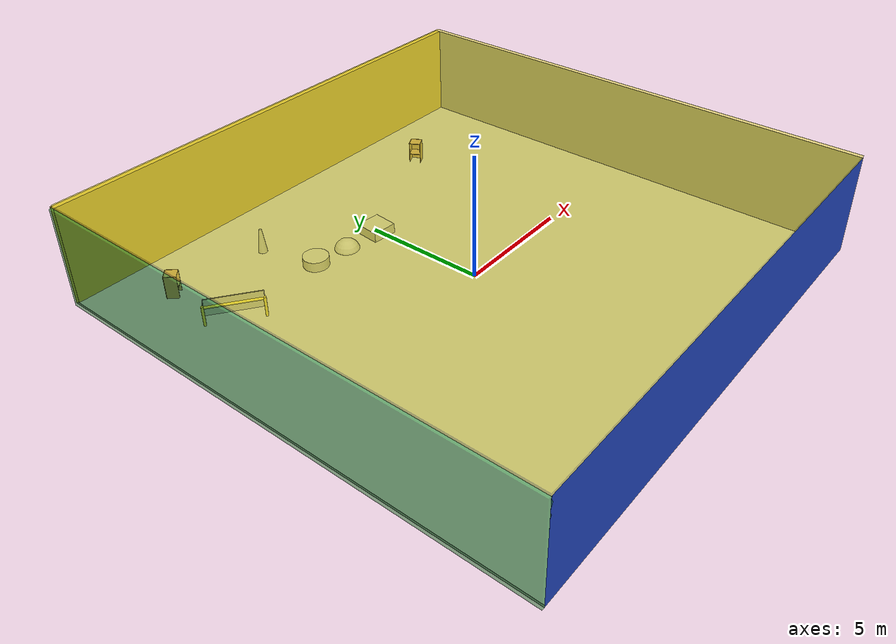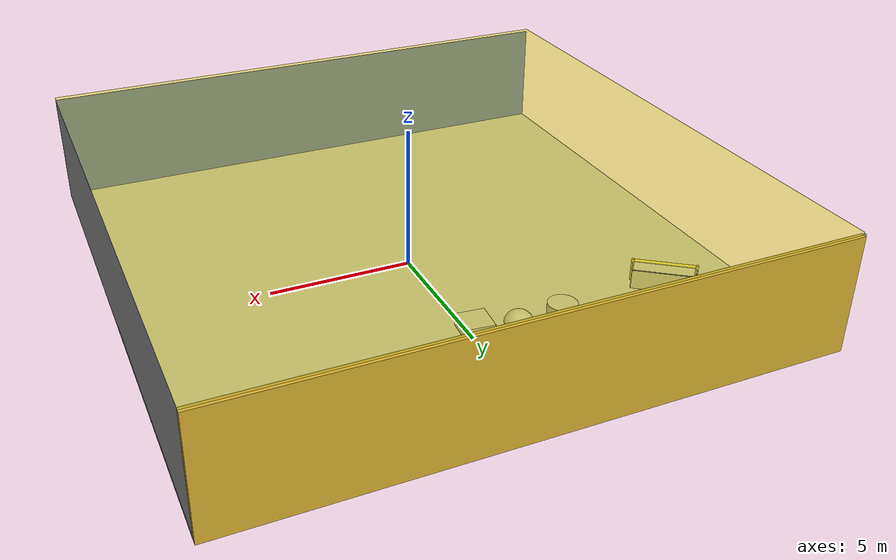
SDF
<sdf version="1.4">
 <world name="default">
  <physics type="ode">
   <max_step_size>0.001</max_step_size>
   <real_time_factor>1</real_time_factor>
   <real_time_update_rate>1000</real_time_update_rate>
   <gravity>0 0 -9.8</gravity>
  </physics>
  <scene><ambient>0.4 0.4 0.4 1</ambient><background>0.7 0.7 0.7 1</background><shadows>1</shadows></scene>
  <model name="Surrounding">
   <static>1</static>
   <link name="Ceiling">
    <collision name="Ceiling_Collision"><geometry><box><size>20 20 0.1</size></box></geometry></collision>
    <visual name="Ceiling_Visual">
     <geometry><box><size>20 20 0.1</size></box></geometry>
     <material>
      <script>
       <uri>file://media/materials/scripts/gazebo.material</uri>
       <name>Gazebo/YellowTransparent</name>
      </script>
     </material>
    </visual>
    <pose>0 0 4.05 0 0 0</pose>
   </link>
   <link name="Wall_South">
    <collision name="Wall_South_Collision">
     <geometry><box><size>20 0 4</size></box></geometry>
     <pose>0 0 2 0 -0 0</pose>
    </collision>
    <visual name="Wall_South_Visual">
     <pose>0 0 2 0 -0 0</pose>
     <geometry><box><size>20 0 4</size></box></geometry>
     <material>
      <script><uri>file://media/materials/scripts/gazebo.material</uri><name>Gazebo/BlueLaser</name></script>
     </material>
    </visual>
    <velocity_decay><linear>0</linear><angular>0</angular></velocity_decay>
    <pose>0 -10 0 0 -0 0</pose>
   </link>
   <link name="Wall_East">
    <collision name="Wall_21_Collision">
     <geometry><box><size>20 0 4</size></box></geometry>
     <pose>0 0 2 0 -0 0</pose>
    </collision>
    <visual name="Wall_21_Visual">
     <pose>0 0 2 0 -0 0</pose>
     <geometry><box><size>20 0 4</size></box></geometry>
     <material>
      <script><uri>file://media/materials/scripts/gazebo.material</uri><name>Gazebo/Grey</name></script>
     </material>
    </visual>
    <velocity_decay><linear>0</linear><angular>0</angular></velocity_decay>
    <pose>10 0 0 0 -0 1.5708</pose>
   </link>
   <link name="Wall_North">
    <collision name="Wall_22_Collision">
     <geometry><box><size>20 0.2 4</size></box></geometry>
     <pose>0 0 2 0 -0 0</pose>
    </collision>
    <visual name="Wall_22_Visual">
     <pose>0 0 2 0 -0 0</pose>
     <geometry><box><size>20 0.2 4</size></box></geometry>
     <material>
      <script><uri>file://media/materials/scripts/gazebo.material</uri><name>Gazebo/Gold</name></script>
     </material>
    </visual>
    <velocity_decay><linear>0</linear><angular>0</angular></velocity_decay>
    <pose>0 10 0 0 -0 0</pose>
   </link>
   <link name="Wall_West">
    <collision name="Wall_23_Collision">
     <geometry><box><size>20 0.2 4</size></box></geometry>
     <pose>0 0 2 0 -0 0</pose>
    </collision>
    <visual name="Wall_23_Visual">
     <pose>0 0 2 0 -0 0</pose>
     <geometry><box><size>20 0.2 4</size></box></geometry>
     <material>
      <script><uri>file://media/materials/scripts/gazebo.material</uri><name>Gazebo/GreenTransparent</name></script>
     </material>
    </visual>
    <velocity_decay><linear>0</linear><angular>0</angular></velocity_decay>
    <pose>-10 0 0 0 0 -1.5708</pose>
   </link>
   <link name="Ground_link">
    <collision name="collision">
     <pose>0 0 .05 0 -0 0</pose>
     <geometry><box><size>20 20 0.1</size></box></geometry>
    </collision>
    <visual name="visual">
     <pose>0 0 .05 0 -0 0</pose>
     <geometry><box><size>20 20 0.1</size></box></geometry>
     <material>
      <script><uri>file://media/materials/scripts/gazebo.material</uri><name>Gazebo/LightOff</name></script>
     </material>
    </visual>
   </link>
   <static>1</static>
  </model>
  <spherical_coordinates>
   <surface_model>EARTH_WGS84</surface_model>
   <latitude_deg>0</latitude_deg>
   <longitude_deg>0</longitude_deg>
   <elevation>0</elevation>
   <heading_deg>0</heading_deg>
  </spherical_coordinates>
  <light name="lightball_0" type="diffuse">
   <diffuse>0.8 0.8 0.8 1</diffuse>
   <specular>0.2 0.2 0.2 1</specular>
   <attenuation>
    <range>100</range>
    <constant>0.7</constant>
    <linear>0.01</linear>
    <quadratic>0.001</quadratic>
   </attenuation>
   <direction>-0.5 0.1 -0.9</direction>
   <pose>-7.81467520887 5.73085348367 1.99723562256 0 0 0</pose>
  </light>
  <light name="lightball_1" type="diffuse">
   <diffuse>0.8 0.8 0.8 1</diffuse>
   <specular>0.2 0.2 0.2 1</specular>
   <attenuation>
    <range>100</range>
    <constant>0.7</constant>
    <linear>0.01</linear>
    <quadratic>0.001</quadratic>
   </attenuation>
   <direction>-0.5 0.1 -0.9</direction>
   <pose>7.37006382633 -1.92878294146 0.870668043779 0 0 0</pose>
  </light>
  <light name="lightball_2" type="diffuse">
   <diffuse>0.8 0.8 0.8 1</diffuse>
   <specular>0.2 0.2 0.2 1</specular>
   <attenuation>
    <range>100</range>
    <constant>0.7</constant>
    <linear>0.01</linear>
    <quadratic>0.001</quadratic>
   </attenuation>
   <direction>-0.5 0.1 -0.9</direction>
   <pose>-4.61660904323 -5.9436264345 2.74327536499 0 0 0</pose>
  </light>
  <light name="lightball_3" type="diffuse">
   <diffuse>0.8 0.8 0.8 1</diffuse>
   <specular>0.2 0.2 0.2 1</specular>
   <attenuation>
    <range>100</range>
    <constant>0.7</constant>
    <linear>0.01</linear>
    <quadratic>0.001</quadratic>
   </attenuation>
   <direction>-0.5 0.1 -0.9</direction>
   <pose>-3.60509848966 5.12532460085 2.9856497096 0 0 0</pose>
  </light>
  <light name="lightball_4" type="diffuse">
   <diffuse>0.8 0.8 0.8 1</diffuse>
   <specular>0.2 0.2 0.2 1</specular>
   <attenuation>
    <range>100</range>
    <constant>0.7</constant>
    <linear>0.01</linear>
    <quadratic>0.001</quadratic>
   </attenuation>
   <direction>-0.5 0.1 -0.9</direction>
   <pose>-8.8834992054 5.04255638629 0.667472830674 0 0 0</pose>
  </light>
  <light name="lightball_5" type="diffuse">
   <diffuse>0.8 0.8 0.8 1</diffuse>
   <specular>0.2 0.2 0.2 1</specular>
   <attenuation>
    <range>100</range>
    <constant>0.7</constant>
    <linear>0.01</linear>
    <quadratic>0.001</quadratic>
   </attenuation>
   <direction>-0.5 0.1 -0.9</direction>
   <pose>1.08834108799 4.86284044649 2.03870095548 0 0 0</pose>
  </light>
  <light name="lightball_6" type="diffuse">
   <diffuse>0.8 0.8 0.8 1</diffuse>
   <specular>0.2 0.2 0.2 1</specular>
   <attenuation>
    <range>100</range>
    <constant>0.7</constant>
    <linear>0.01</linear>
    <quadratic>0.001</quadratic>
   </attenuation>
   <direction>-0.5 0.1 -0.9</direction>
   <pose>3.06400784031 -1.23941183105 2.5509626778 0 0 0</pose>
  </light>
  <light name="lightball_7" type="diffuse">
   <diffuse>0.8 0.8 0.8 1</diffuse>
   <specular>0.2 0.2 0.2 1</specular>
   <attenuation>
    <range>100</range>
    <constant>0.7</constant>
    <linear>0.01</linear>
    <quadratic>0.001</quadratic>
   </attenuation>
   <direction>-0.5 0.1 -0.9</direction>
   <pose>-1.72507180155 3.04192186306 1.62417553239 0 0 0</pose>
  </light>
  <include>
   <uri>model://robocup_3Dsim_goal</uri>
   <pose>-7.23725063934 4.74941258687 0 0 0 0.935720182142</pose>
  </include>
  <include><uri>model://cabinet</uri><pose>-7.61151860213 7.65310892442 0 0 0 2.32748002621</pose></include>
  <include>
   <uri>model://construction_cone</uri>
   <pose>-3.81830963787 7.24527411766 0 0 0 0.187205144063</pose>
  </include>
  <include>
   <uri>model://textured_shapes</uri>
   <pose>-1.69640874303 4.86596271004 0 0 0 1.47965530392</pose>
  </include>
  <include><uri>model://cabinet</uri><pose>5.20495416415 7.35778432565 0 0 0 0.491075670878</pose></include>
 </world>
</sdf>

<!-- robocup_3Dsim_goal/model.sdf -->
<sdf version="1.5">
  <model name="robocup_3d_goal">
    <static>true</static>
    <link name="left_post">
      <pose>0 1.05 0.45 0 0 0</pose>
      <collision name="collision">
        <geometry>
          <cylinder>
            <radius>0.05</radius>
            <length>0.9</length>
          </cylinder>
        </geometry>
      </collision>
      <visual name="visual">
        <geometry>
          <cylinder>
            <radius>0.05</radius>
            <length>0.9</length>
          </cylinder>
        </geometry>
        <material>
          <script>
            <uri>file://media/materials/scripts/gazebo.material</uri>
            <name>Gazebo/ZincYellow</name>
          </script>
        </material>
      </visual>
    </link>
    <link name="left_support_horiz_lower">
      <pose>0.30 1.05 0.01 0 0 0</pose>
      <collision name="collision">
        <geometry>
          <box>
            <size>0.50 0.02 0.02</size>
          </box>
        </geometry>
      </collision>
      <visual name="visual">
        <geometry>
          <box>
            <size>0.50 0.02 0.02</size>
          </box>
        </geometry>
        <material>
          <script>
            <uri>file://media/materials/scripts/gazebo.material</uri>
            <name>Gazebo/White</name>
          </script>
        </material>
      </visual>
    </link>
    <link name="left_support_horiz_upper">
      <pose>0.30 1.05 0.79 0 0 0</pose>
      <collision name="collision">
        <geometry>
          <box>
            <size>0.50 0.02 0.02</size>
          </box>
        </geometry>
      </collision>
      <visual name="visual">
        <geometry>
          <box>
            <size>0.50 0.02 0.02</size>
          </box>
        </geometry>
        <material>
          <script>
            <uri>file://media/materials/scripts/gazebo.material</uri>
            <name>Gazebo/White</name>
          </script>
        </material>
      </visual>
    </link>
    <link name="left_support_vertical">
      <pose>0.56 1.05 0.4 0 1.5708 0</pose>
      <collision name="collision">
        <geometry>
          <box>
            <size>0.80 0.02 0.02</size>
          </box>
        </geometry>
      </collision>
      <visual name="visual">
        <geometry>
          <box>
            <size>0.80 0.02 0.02</size>
          </box>
        </geometry>
        <material>
          <script>
            <uri>file://media/materials/scripts/gazebo.material</uri>
            <name>Gazebo/White</name>
          </script>
        </material>
      </visual>
    </link>
    <link name="right_support_horiz_lower">
      <pose>0.30 -1.05 0.01 0 0 0</pose>
      <collision name="collision">
        <geometry>
          <box>
            <size>0.50 0.02 0.02</size>
          </box>
        </geometry>
      </collision>
      <visual name="visual">
        <geometry>
          <box>
            <size>0.50 0.02 0.02</size>
          </box>
        </geometry>
        <material>
          <script>
            <uri>file://media/materials/scripts/gazebo.material</uri>
            <name>Gazebo/White</name>
          </script>
        </material>
      </visual>
    </link>
    <link name="right_support_horiz_upper">
      <pose>0.30 -1.05 0.79 0 0 0</pose>
      <collision name="collision">
        <geometry>
          <box>
            <size>0.50 0.02 0.02</size>
          </box>
        </geometry>
      </collision>
      <visual name="visual">
        <geometry>
          <box>
            <size>0.50 0.02 0.02</size>
          </box>
        </geometry>
        <material>
          <script>
            <uri>file://media/materials/scripts/gazebo.material</uri>
            <name>Gazebo/White</name>
          </script>
        </material>
      </visual>
    </link>
    <link name="right_support_vertical">
      <pose>0.56 -1.05 0.4 0 1.5708 0</pose>
      <collision name="collision">
        <geometry>
          <box>
            <size>0.80 0.02 0.02</size>
          </box>
        </geometry>
      </collision>
      <visual name="visual">
        <geometry>
          <box>
            <size>0.80 0.02 0.02</size>
          </box>
        </geometry>
        <material>
          <script>
            <uri>file://media/materials/scripts/gazebo.material</uri>
            <name>Gazebo/White</name>
          </script>
        </material>
      </visual>
    </link>
    <link name="center_support_horiz_lower">
      <pose>0.56 0 0.01 0 1.5708 0</pose>
      <collision name="collision">
        <geometry>
          <box>
            <size>0.02 2.08 0.02</size>
          </box>
        </geometry>
      </collision>
      <visual name="visual">
        <geometry>
          <box>
            <size>0.02 2.08 0.02</size>
          </box>
        </geometry>
        <material>
          <script>
            <uri>file://media/materials/scripts/gazebo.material</uri>
            <name>Gazebo/White</name>
          </script>
        </material>
      </visual>
    </link>
    <link name="center_support_horiz_upper">
      <pose>0.56 0 0.79 0 1.5708 0</pose>
      <collision name="collision">
        <geometry>
          <box>
            <size>0.02 2.08 0.02</size>
          </box>
        </geometry>
      </collision>
      <visual name="visual">
        <geometry>
          <box>
            <size>0.02 2.08 0.02</size>
          </box>
        </geometry>
        <material>
          <script>
            <uri>file://media/materials/scripts/gazebo.material</uri>
            <name>Gazebo/White</name>
          </script>
        </material>
      </visual>
    </link>
    <link name="right_post">
      <pose>0 -1.05 0.45 0 0 0</pose>
      <collision name="collision">
        <geometry>
          <cylinder>
            <radius>0.05</radius>
            <length>0.9</length>
          </cylinder>
        </geometry>
      </collision>
      <visual name="visual">
        <geometry>
          <cylinder>
            <radius>0.05</radius>
            <length>0.9</length>
          </cylinder>
        </geometry>
        <material>
          <script>
            <uri>file://media/materials/scripts/gazebo.material</uri>
            <name>Gazebo/ZincYellow</name>
          </script>
        </material>
      </visual>
    </link>
    <link name="crossbar">
      <pose>0 0 0.85 1.57 1.57 0</pose>
      <collision name="collision">
        <geometry>
          <cylinder>
            <radius>0.05</radius>
            <length>2.0</length>
          </cylinder>
        </geometry>
      </collision>
      <visual name="visual">
        <geometry>
          <cylinder>
            <radius>0.05</radius>
            <length>2.0</length>
          </cylinder>
        </geometry>
        <material>
          <script>
            <uri>file://media/materials/scripts/gazebo.material</uri>
            <name>Gazebo/ZincYellow</name>
          </script>
        </material>
      </visual>
    </link>
    <link name="center_net">
      <pose>0.56 0 0.40 0 0 0</pose>
      <collision name="collision">
        <geometry>
          <box>
            <size>0.01 2.1 0.80</size>
          </box>
        </geometry>
      </collision>
      <visual name="visual">
        <geometry>
          <box>
            <size>0.01 2.1 0.80</size>
          </box>
        </geometry>
        <material>
          <script>
            <uri>model://../model_source/models/robocup09_spl_field/materials/scripts/</uri>
            <uri>model://../model_source/models/robocup09_spl_field/materials/textures/</uri>
            <name>RoboCup/Net</name>
          </script>
        </material>
      </visual>
    </link>
    <link name="left_net">
      <pose>0.30 1.05 0.40 0 0 0</pose>
      <collision name="collision">
        <geometry>
          <box>
            <size>0.50 0.01 0.76</size>
          </box>
        </geometry>
      </collision>
      <visual name="visual">
        <geometry>
          <box>
            <size>0.50 0.01 0.76</size>
          </box>
        </geometry>
        <material>
          <script>
            <uri>model://../model_source/models/robocup09_spl_field/materials/scripts/</uri>
            <uri>model://../model_source/models/robocup09_spl_field/materials/textures/</uri>
            <name>RoboCup/Net</name>
          </script>
        </material>
      </visual>
    </link>
    <link name="right_net">
      <pose>0.30 -1.05 0.40 0 0 0</pose>
      <collision name="collision">
        <geometry>
          <box>
            <size>0.50 0.01 0.76</size>
          </box>
        </geometry>
      </collision>
      <visual name="visual">
        <geometry>
          <box>
            <size>0.50 0.01 0.76</size>
          </box>
        </geometry>
        <material>
          <script>
            <uri>model://../model_source/models/robocup09_spl_field/materials/scripts/</uri>
            <uri>model://../model_source/models/robocup09_spl_field/materials/textures/</uri>
            <name>RoboCup/Net</name>
          </script>
        </material>
      </visual>
    </link>
  </model>
</sdf>

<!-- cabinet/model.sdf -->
<sdf version="1.5">
  <model name="cabinet">
    <static>true</static>
    <link name="cabinet_bottom_plate">
      <inertial>
        <pose>0 0 -1 0 0 0</pose>
        <inertia>
          <ixx>2.050000</ixx>
          <ixy>0</ixy>
          <ixz>0</ixz>
          <iyy>2.050000</iyy>
          <iyz>0</iyz>
          <izz>2.050000</izz>
        </inertia>
        <mass>25.000000</mass>
      </inertial>
      <collision name="cabinet_bottom_plate_geom">
        <pose>0 0 0.010000 0 0 0</pose>
        <geometry>
          <box>
            <size>0.450000 0.450000 0.020000</size>
          </box>
        </geometry>
      </collision>
      <visual name="cabinet_bottom_plate_geom_visual">
        <pose>0 0 0.010000 0 0 0</pose>
        <geometry>
          <box>
            <size>0.450000 0.450000 0.020000</size>
          </box>
        </geometry>
        <material>
          <script>
            <uri>model://media/materials/scripts/gazebo.material</uri>
            <name>Gazebo/Wood</name>
          </script>
        </material>
      </visual>
      <collision name="cabinet_bottom_plate_geom_cabinet_back_plate">
        <pose>0.235000 0 0.510000 0 0 0</pose>
        <geometry>
          <box>
            <size>0.020000 0.450000 1.020000</size>
          </box>
        </geometry>
      </collision>
      <visual name="cabinet_bottom_plate_geom_cabinet_back_plate_visual">
        <pose>0.235000 0 0.510000 0 0 0</pose>
        <geometry>
          <box>
            <size>0.020000 0.450000 1.020000</size>
          </box>
        </geometry>
        <material>
          <script>
            <uri>model://media/materials/scripts/gazebo.material</uri>
            <name>Gazebo/Wood</name>
          </script>
        </material>
      </visual>
      <collision name="cabinet_bottom_plate_geom_cabinet_left_plate">
        <pose>0 0.235000 0.510000 0 0 0</pose>
        <geometry>
          <box>
            <size>0.450000 0.020000 1.020000</size>
          </box>
        </geometry>
      </collision>
      <visual name="cabinet_bottom_plate_geom_cabinet_left_plate_visual">
        <pose>0 0.235000 0.510000 0 0 0</pose>
        <geometry>
          <box>
            <size>0.450000 0.020000 1.020000</size>
          </box>
        </geometry>
        <material>
          <script>
            <uri>model://media/materials/scripts/gazebo.material</uri>
            <name>Gazebo/Wood</name>
          </script>
        </material>
      </visual>
      <collision name="cabinet_bottom_plate_geom_cabinet_middle_plate">
        <pose>0 0 0.510000 0 0 0</pose>
        <geometry>
          <box>
            <size>0.450000 0.450000 0.020000</size>
          </box>
        </geometry>
      </collision>
      <visual name="cabinet_bottom_plate_geom_cabinet_middle_plate_visual">
        <pose>0 0 0.510000 0 0 0</pose>
        <geometry>
          <box>
            <size>0.450000 0.450000 0.020000</size>
          </box>
        </geometry>
        <material>
          <script>
            <uri>model://media/materials/scripts/gazebo.material</uri>
            <name>Gazebo/Wood</name>
          </script>
        </material>
      </visual>
      <collision name="cabinet_bottom_plate_geom_cabinet_right_plate">
        <pose>0 -0.235000 0.510000 0 0 0</pose>
        <geometry>
          <box>
            <size>0.450000 0.020000 1.020000</size>
          </box>
        </geometry>
      </collision>
      <visual name="cabinet_bottom_plate_geom_cabinet_right_plate_visual">
        <pose>0 -0.235000 0.510000 0 0 0</pose>
        <geometry>
          <box>
            <size>0.450000 0.020000 1.020000</size>
          </box>
        </geometry>
        <material>
          <script>
            <uri>model://media/materials/scripts/gazebo.material</uri>
            <name>Gazebo/Wood</name>
          </script>
        </material>
      </visual>
      <collision name="cabinet_bottom_plate_geom_cabinet_top_plate">
        <pose>0 0 1.010000 0 0 0</pose>
        <geometry>
          <box>
            <size>0.450000 0.450000 0.020000</size>
          </box>
        </geometry>
      </collision>
      <visual name="cabinet_bottom_plate_geom_cabinet_top_plate_visual">
        <pose>0 0 1.010000 0 0 0</pose>
        <geometry>
          <box>
            <size>0.450000 0.450000 0.020000</size>
          </box>
        </geometry>
        <material>
          <script>
            <uri>model://media/materials/scripts/gazebo.material</uri>
            <name>Gazebo/Wood</name>
          </script>
        </material>
      </visual>
    </link>
  </model>
</sdf>

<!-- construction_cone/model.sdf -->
<sdf version="1.5">
  <model name="Construction Cone">
    <link name="link">
      <collision name="collision">
        <geometry>
          <mesh>
            <scale>10 10 10</scale>
            <uri>file://isr-testbed/construction_cone/meshes/construction_cone.dae</uri>
          </mesh>
        </geometry>
      </collision>
      <visual name="visual">
        <geometry>
          <mesh>
            <scale>10 10 10</scale>
            <uri>file://isr-testbed/construction_cone/meshes/construction_cone.dae</uri>
          </mesh>
        </geometry>
      </visual>
    </link>
  </model>
</sdf>

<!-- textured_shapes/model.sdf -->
<sdf version="1.6">
  <model name="textured_shapes">
    <pose>0 0 0.5 0 0 0</pose>
    <link name="box">
      <pose>0 -1.5 0 0 0 0</pose>
      <collision name="collision">
        <geometry>
          <box>
            <size>1 1 1</size>
          </box>
        </geometry>
      </collision>
      <visual name="visual">
        <geometry>
          <box>
            <size>1 1 1</size>
          </box>
        </geometry>
        <material>
          <script>
            <uri>model://../model_source/models/textured_shapes/materials/scripts</uri>
            <uri>model://../model_source/models/textured_shapes/materials/textures</uri>
            <name>TexturedShape/Squares</name>
          </script>
        </material>
      </visual>
    </link>
    <link name="sphere">
      <collision name="collision">
        <geometry>
          <sphere>
            <radius>0.5</radius>
          </sphere>
        </geometry>
      </collision>
      <visual name="visual">
        <geometry>
          <sphere>
            <radius>0.5</radius>
          </sphere>
        </geometry>
        <material>
          <script>
            <uri>model://../model_source/models/textured_shapes/materials/scripts</uri>
            <uri>model://../model_source/models/textured_shapes/materials/textures</uri>
            <name>TexturedShape/Squares</name>
          </script>
        </material>
      </visual>
    </link>
    <link name="cylinder">
      <pose>0 1.5 0 0 0 0</pose>
      <collision name="collision">
        <geometry>
          <cylinder>
            <radius>0.5</radius>
            <length>1</length>
          </cylinder>
        </geometry>
      </collision>
      <visual name="visual">
        <geometry>
          <cylinder>
            <radius>0.5</radius>
            <length>1</length>
          </cylinder>
        </geometry>
        <material>
          <script>
            <uri>model://../model_source/models/textured_shapes/materials/scripts</uri>
            <uri>model://../model_source/models/textured_shapes/materials/textures</uri>
            <name>TexturedShape/Squares</name>
          </script>
        </material>
      </visual>
    </link>
  </model>
</sdf>
